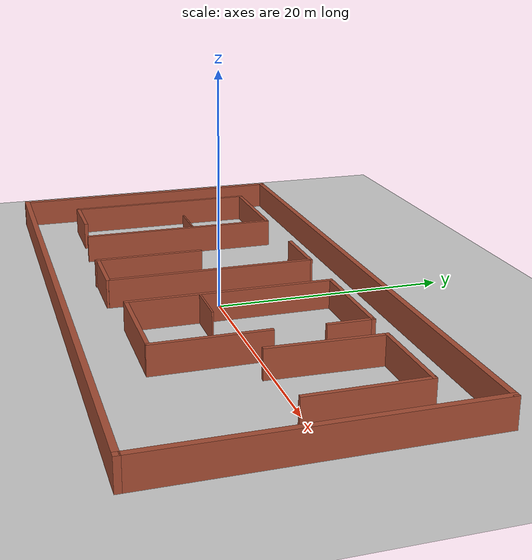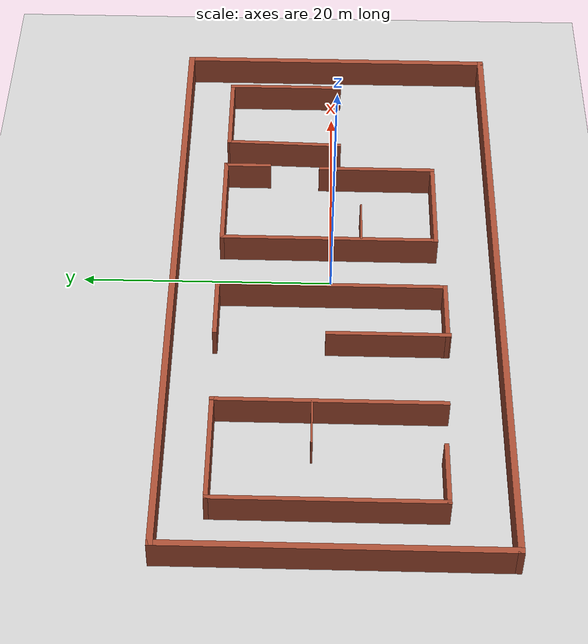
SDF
<sdf version="1.6">
 <world name="default">
  <light name="sun" type="directional">
   <pose>0 0 10 0 -0 0</pose>
   <diffuse>0.8 0.8 0.8 1</diffuse>
   <specular>0.1 0.1 0.1 1</specular>
   <attenuation>
    <range>1000</range>
    <constant>0.9</constant>
    <linear>0.01</linear>
    <quadratic>0.001</quadratic>
   </attenuation>
   <direction>-0.5 0.5 -1</direction>
  </light>
  <model name="ground_plane">
   <static>1</static>
   <link name="link">
    <collision name="collision">
     <geometry><plane><normal>0 0 1</normal><size>100 100</size></plane></geometry>
     <surface><friction><ode><mu>100</mu><mu2>50</mu2></ode></friction></surface>
    </collision>
    <visual name="visual">
     <cast_shadows>0</cast_shadows>
     <geometry><plane><normal>0 0 1</normal><size>100 100</size></plane></geometry>
     <material>
      <script><uri>file://media/materials/scripts/gazebo.material</uri><name>Gazebo/Grey</name></script>
     </material>
    </visual>
   </link>
  </model>
  <gravity>0 0 -9.8</gravity>
  <magnetic_field>6e-06 2.3e-05 -4.2e-05</magnetic_field>
  <atmosphere type="adiabatic"/>
  <physics name="default_physics" default="0" type="ode">
   <max_step_size>0.001</max_step_size>
   <real_time_factor>1</real_time_factor>
   <real_time_update_rate>1000</real_time_update_rate>
  </physics>
  <scene><ambient>0.4 0.4 0.4 1</ambient><background>0.7 0.7 0.7 1</background><shadows>1</shadows></scene>
  <spherical_coordinates>
   <surface_model>EARTH_WGS84</surface_model>
   <latitude_deg>0</latitude_deg>
   <longitude_deg>0</longitude_deg>
   <elevation>0</elevation>
   <heading_deg>0</heading_deg>
  </spherical_coordinates>
  <model name="map_two_0">
   <link name="Wall_0">
    <pose>1e-06 12.925 0 0 -0 0</pose>
    <visual name="Wall_0_Visual">
     <pose>0 0 1.25 0 -0 0</pose>
     <geometry><box><size>53.35 0.5 2.5</size></box></geometry>
     <material>
      <script><uri>file://media/materials/scripts/gazebo.material</uri><name>Gazebo/Bricks</name></script>
      <ambient>1 1 1 1</ambient>
      <diffuse>1 1 1 1</diffuse>
      <specular>0.2 0.2 0.2 1</specular>
      <emissive>0 0 0 1</emissive>
     </material>
    </visual>
    <collision name="Wall_0_Collision">
     <pose>0 0 1.25 0 -0 0</pose>
     <geometry><box><size>53.35 0.5 2.5</size></box></geometry>
     <surface>
      <friction>
       <ode><mu>1</mu><mu2>1</mu2><fdir1>0 0 0</fdir1><slip1>0</slip1><slip2>0</slip2></ode>
       <torsional>
        <coefficient>1</coefficient>
        <patch_radius>0</patch_radius>
        <surface_radius>0</surface_radius>
        <use_patch_radius>1</use_patch_radius>
        <ode><slip>0</slip></ode>
       </torsional>
      </friction>
      <bounce><restitution_coefficient>0</restitution_coefficient><threshold>1e+06</threshold></bounce>
      <contact>
       <collide_without_contact>0</collide_without_contact>
       <collide_without_contact_bitmask>1</collide_without_contact_bitmask>
       <collide_bitmask>1</collide_bitmask>
       <ode>
        <soft_cfm>0</soft_cfm>
        <soft_erp>0.2</soft_erp>
        <kp>1e+13</kp>
        <kd>1</kd>
        <max_vel>0.01</max_vel>
        <min_depth>0</min_depth>
       </ode>
       <bullet>
        <split_impulse>1</split_impulse>
        <split_impulse_penetration_threshold>-0.01</split_impulse_penetration_threshold>
        <soft_cfm>0</soft_cfm>
        <soft_erp>0.2</soft_erp>
        <kp>1e+13</kp>
        <kd>1</kd>
       </bullet>
      </contact>
     </surface>
    </collision>
   </link>
   <link name="Wall_1">
    <pose>26.425 0 0 0 0 -1.5708</pose>
    <visual name="Wall_1_Visual">
     <pose>0 0 1.25 0 -0 0</pose>
     <geometry><box><size>26.35 0.5 2.5</size></box></geometry>
     <material>
      <script><uri>file://media/materials/scripts/gazebo.material</uri><name>Gazebo/Bricks</name></script>
      <ambient>1 1 1 1</ambient>
      <diffuse>1 1 1 1</diffuse>
      <specular>0.2 0.2 0.2 1</specular>
      <emissive>0 0 0 1</emissive>
     </material>
    </visual>
    <collision name="Wall_1_Collision">
     <pose>0 0 1.25 0 -0 0</pose>
     <geometry><box><size>26.35 0.5 2.5</size></box></geometry>
     <surface>
      <friction>
       <ode><mu>1</mu><mu2>1</mu2><fdir1>0 0 0</fdir1><slip1>0</slip1><slip2>0</slip2></ode>
       <torsional>
        <coefficient>1</coefficient>
        <patch_radius>0</patch_radius>
        <surface_radius>0</surface_radius>
        <use_patch_radius>1</use_patch_radius>
        <ode><slip>0</slip></ode>
       </torsional>
      </friction>
      <bounce><restitution_coefficient>0</restitution_coefficient><threshold>1e+06</threshold></bounce>
      <contact>
       <collide_without_contact>0</collide_without_contact>
       <collide_without_contact_bitmask>1</collide_without_contact_bitmask>
       <collide_bitmask>1</collide_bitmask>
       <ode>
        <soft_cfm>0</soft_cfm>
        <soft_erp>0.2</soft_erp>
        <kp>1e+13</kp>
        <kd>1</kd>
        <max_vel>0.01</max_vel>
        <min_depth>0</min_depth>
       </ode>
       <bullet>
        <split_impulse>1</split_impulse>
        <split_impulse_penetration_threshold>-0.01</split_impulse_penetration_threshold>
        <soft_cfm>0</soft_cfm>
        <soft_erp>0.2</soft_erp>
        <kp>1e+13</kp>
        <kd>1</kd>
       </bullet>
      </contact>
     </surface>
    </collision>
   </link>
   <link name="Wall_2">
    <pose>1e-06 -12.925 0 0 -0 3.14159</pose>
    <visual name="Wall_2_Visual">
     <pose>0 0 1.25 0 -0 0</pose>
     <geometry><box><size>53.35 0.5 2.5</size></box></geometry>
     <material>
      <script><uri>file://media/materials/scripts/gazebo.material</uri><name>Gazebo/Bricks</name></script>
      <ambient>1 1 1 1</ambient>
      <diffuse>1 1 1 1</diffuse>
      <specular>0.2 0.2 0.2 1</specular>
      <emissive>0 0 0 1</emissive>
     </material>
    </visual>
    <collision name="Wall_2_Collision">
     <pose>0 0 1.25 0 -0 0</pose>
     <geometry><box><size>53.35 0.5 2.5</size></box></geometry>
     <surface>
      <friction>
       <ode><mu>1</mu><mu2>1</mu2><fdir1>0 0 0</fdir1><slip1>0</slip1><slip2>0</slip2></ode>
       <torsional>
        <coefficient>1</coefficient>
        <patch_radius>0</patch_radius>
        <surface_radius>0</surface_radius>
        <use_patch_radius>1</use_patch_radius>
        <ode><slip>0</slip></ode>
       </torsional>
      </friction>
      <bounce><restitution_coefficient>0</restitution_coefficient><threshold>1e+06</threshold></bounce>
      <contact>
       <collide_without_contact>0</collide_without_contact>
       <collide_without_contact_bitmask>1</collide_without_contact_bitmask>
       <collide_bitmask>1</collide_bitmask>
       <ode>
        <soft_cfm>0</soft_cfm>
        <soft_erp>0.2</soft_erp>
        <kp>1e+13</kp>
        <kd>1</kd>
        <max_vel>0.01</max_vel>
        <min_depth>0</min_depth>
       </ode>
       <bullet>
        <split_impulse>1</split_impulse>
        <split_impulse_penetration_threshold>-0.01</split_impulse_penetration_threshold>
        <soft_cfm>0</soft_cfm>
        <soft_erp>0.2</soft_erp>
        <kp>1e+13</kp>
        <kd>1</kd>
       </bullet>
      </contact>
     </surface>
    </collision>
   </link>
   <link name="Wall_21">
    <pose>-17.839 9.223 0 0 -0 0</pose>
    <visual name="Wall_21_Visual">
     <pose>0 0 1.25 0 -0 0</pose>
     <geometry><box><size>9.45 0.35 2.5</size></box></geometry>
     <material>
      <script><uri>file://media/materials/scripts/gazebo.material</uri><name>Gazebo/Bricks</name></script>
      <ambient>1 1 1 1</ambient>
      <diffuse>1 1 1 1</diffuse>
      <specular>0.2 0.2 0.2 1</specular>
      <emissive>0 0 0 1</emissive>
     </material>
    </visual>
    <collision name="Wall_21_Collision">
     <pose>0 0 1.25 0 -0 0</pose>
     <geometry><box><size>9.45 0.35 2.5</size></box></geometry>
     <surface>
      <friction>
       <ode><mu>1</mu><mu2>1</mu2><fdir1>0 0 0</fdir1><slip1>0</slip1><slip2>0</slip2></ode>
       <torsional>
        <coefficient>1</coefficient>
        <patch_radius>0</patch_radius>
        <surface_radius>0</surface_radius>
        <use_patch_radius>1</use_patch_radius>
        <ode><slip>0</slip></ode>
       </torsional>
      </friction>
      <bounce><restitution_coefficient>0</restitution_coefficient><threshold>1e+06</threshold></bounce>
      <contact>
       <collide_without_contact>0</collide_without_contact>
       <collide_without_contact_bitmask>1</collide_without_contact_bitmask>
       <collide_bitmask>1</collide_bitmask>
       <ode>
        <soft_cfm>0</soft_cfm>
        <soft_erp>0.2</soft_erp>
        <kp>1e+13</kp>
        <kd>1</kd>
        <max_vel>0.01</max_vel>
        <min_depth>0</min_depth>
       </ode>
       <bullet>
        <split_impulse>1</split_impulse>
        <split_impulse_penetration_threshold>-0.01</split_impulse_penetration_threshold>
        <soft_cfm>0</soft_cfm>
        <soft_erp>0.2</soft_erp>
        <kp>1e+13</kp>
        <kd>1</kd>
       </bullet>
      </contact>
     </surface>
    </collision>
   </link>
   <link name="Wall_22">
    <pose>-13.289 0.423 0 0 0 -1.5708</pose>
    <visual name="Wall_22_Visual">
     <pose>0 0 1.25 0 -0 0</pose>
     <geometry><box><size>17.9498 0.35 2.5</size></box></geometry>
     <material>
      <script><uri>file://media/materials/scripts/gazebo.material</uri><name>Gazebo/Bricks</name></script>
      <ambient>1 1 1 1</ambient>
      <diffuse>1 1 1 1</diffuse>
      <specular>0.2 0.2 0.2 1</specular>
      <emissive>0 0 0 1</emissive>
     </material>
    </visual>
    <collision name="Wall_22_Collision">
     <pose>0 0 1.25 0 -0 0</pose>
     <geometry><box><size>17.9498 0.35 2.5</size></box></geometry>
     <surface>
      <friction>
       <ode><mu>1</mu><mu2>1</mu2><fdir1>0 0 0</fdir1><slip1>0</slip1><slip2>0</slip2></ode>
       <torsional>
        <coefficient>1</coefficient>
        <patch_radius>0</patch_radius>
        <surface_radius>0</surface_radius>
        <use_patch_radius>1</use_patch_radius>
        <ode><slip>0</slip></ode>
       </torsional>
      </friction>
      <bounce><restitution_coefficient>0</restitution_coefficient><threshold>1e+06</threshold></bounce>
      <contact>
       <collide_without_contact>0</collide_without_contact>
       <collide_without_contact_bitmask>1</collide_without_contact_bitmask>
       <collide_bitmask>1</collide_bitmask>
       <ode>
        <soft_cfm>0</soft_cfm>
        <soft_erp>0.2</soft_erp>
        <kp>1e+13</kp>
        <kd>1</kd>
        <max_vel>0.01</max_vel>
        <min_depth>0</min_depth>
       </ode>
       <bullet>
        <split_impulse>1</split_impulse>
        <split_impulse_penetration_threshold>-0.01</split_impulse_penetration_threshold>
        <soft_cfm>0</soft_cfm>
        <soft_erp>0.2</soft_erp>
        <kp>1e+13</kp>
        <kd>1</kd>
       </bullet>
      </contact>
     </surface>
    </collision>
   </link>
   <link name="Wall_22_clone">
    <pose>-1.35731 0.333 0 0 0 -1.5708</pose>
    <visual name="Wall_22_Visual">
     <pose>0 0 1.25 0 -0 0</pose>
     <geometry><box><size>17.9498 0.35 2.5</size></box></geometry>
     <material>
      <script><uri>file://media/materials/scripts/gazebo.material</uri><name>Gazebo/Bricks</name></script>
      <ambient>1 1 1 1</ambient>
      <diffuse>1 1 1 1</diffuse>
      <specular>0.2 0.2 0.2 1</specular>
      <emissive>0 0 0 1</emissive>
      <shader type="pixel"/>
     </material>
    </visual>
    <collision name="Wall_22_Collision">
     <pose>0 0 1.25 0 -0 0</pose>
     <geometry><box><size>17.9498 0.35 2.5</size></box></geometry>
     <surface>
      <friction>
       <ode><mu>1</mu><mu2>1</mu2><fdir1>0 0 0</fdir1><slip1>0</slip1><slip2>0</slip2></ode>
       <torsional>
        <coefficient>1</coefficient>
        <patch_radius>0</patch_radius>
        <surface_radius>0</surface_radius>
        <use_patch_radius>1</use_patch_radius>
        <ode><slip>0</slip></ode>
       </torsional>
      </friction>
      <bounce><restitution_coefficient>0</restitution_coefficient><threshold>1e+06</threshold></bounce>
      <contact>
       <collide_without_contact>0</collide_without_contact>
       <collide_without_contact_bitmask>1</collide_without_contact_bitmask>
       <collide_bitmask>1</collide_bitmask>
       <ode>
        <soft_cfm>0</soft_cfm>
        <soft_erp>0.2</soft_erp>
        <kp>1e+13</kp>
        <kd>1</kd>
        <max_vel>0.01</max_vel>
        <min_depth>0</min_depth>
       </ode>
       <bullet>
        <split_impulse>1</split_impulse>
        <split_impulse_penetration_threshold>-0.01</split_impulse_penetration_threshold>
        <soft_cfm>0</soft_cfm>
        <soft_erp>0.2</soft_erp>
        <kp>1e+13</kp>
        <kd>1</kd>
       </bullet>
      </contact>
     </surface>
    </collision>
   </link>
   <link name="Wall_27">
    <pose>-22.389 0.548 0 0 0 -1.5708</pose>
    <visual name="Wall_27_Visual">
     <pose>0 0 1.25 0 -0 0</pose>
     <geometry><box><size>17.6998 0.35 2.5</size></box></geometry>
     <material>
      <script><uri>file://media/materials/scripts/gazebo.material</uri><name>Gazebo/Bricks</name></script>
      <ambient>1 1 1 1</ambient>
      <diffuse>1 1 1 1</diffuse>
      <specular>0.2 0.2 0.2 1</specular>
      <emissive>0 0 0 1</emissive>
     </material>
    </visual>
    <collision name="Wall_27_Collision">
     <pose>0 0 1.25 0 -0 0</pose>
     <geometry><box><size>17.6998 0.35 2.5</size></box></geometry>
     <surface>
      <friction>
       <ode><mu>1</mu><mu2>1</mu2><fdir1>0 0 0</fdir1><slip1>0</slip1><slip2>0</slip2></ode>
       <torsional>
        <coefficient>1</coefficient>
        <patch_radius>0</patch_radius>
        <surface_radius>0</surface_radius>
        <use_patch_radius>1</use_patch_radius>
        <ode><slip>0</slip></ode>
       </torsional>
      </friction>
      <bounce><restitution_coefficient>0</restitution_coefficient><threshold>1e+06</threshold></bounce>
      <contact>
       <collide_without_contact>0</collide_without_contact>
       <collide_without_contact_bitmask>1</collide_without_contact_bitmask>
       <collide_bitmask>1</collide_bitmask>
       <ode>
        <soft_cfm>0</soft_cfm>
        <soft_erp>0.2</soft_erp>
        <kp>1e+13</kp>
        <kd>1</kd>
        <max_vel>0.01</max_vel>
        <min_depth>0</min_depth>
       </ode>
       <bullet>
        <split_impulse>1</split_impulse>
        <split_impulse_penetration_threshold>-0.01</split_impulse_penetration_threshold>
        <soft_cfm>0</soft_cfm>
        <soft_erp>0.2</soft_erp>
        <kp>1e+13</kp>
        <kd>1</kd>
       </bullet>
      </contact>
     </surface>
    </collision>
   </link>
   <link name="Wall_30">
    <pose>-19.839 -8.127 0 0 -0 0</pose>
    <visual name="Wall_30_Visual">
     <pose>0 0 1.25 0 -0 0</pose>
     <geometry><box><size>5.4496 0.35 2.5</size></box></geometry>
     <material>
      <script><uri>file://media/materials/scripts/gazebo.material</uri><name>Gazebo/Bricks</name></script>
      <ambient>1 1 1 1</ambient>
      <diffuse>1 1 1 1</diffuse>
      <specular>0.2 0.2 0.2 1</specular>
      <emissive>0 0 0 1</emissive>
     </material>
    </visual>
    <collision name="Wall_30_Collision">
     <pose>0 0 1.25 0 -0 0</pose>
     <geometry><box><size>5.4496 0.35 2.5</size></box></geometry>
     <surface>
      <friction>
       <ode><mu>1</mu><mu2>1</mu2><fdir1>0 0 0</fdir1><slip1>0</slip1><slip2>0</slip2></ode>
       <torsional>
        <coefficient>1</coefficient>
        <patch_radius>0</patch_radius>
        <surface_radius>0</surface_radius>
        <use_patch_radius>1</use_patch_radius>
        <ode><slip>0</slip></ode>
       </torsional>
      </friction>
      <bounce><restitution_coefficient>0</restitution_coefficient><threshold>1e+06</threshold></bounce>
      <contact>
       <collide_without_contact>0</collide_without_contact>
       <collide_without_contact_bitmask>1</collide_without_contact_bitmask>
       <collide_bitmask>1</collide_bitmask>
       <ode>
        <soft_cfm>0</soft_cfm>
        <soft_erp>0.2</soft_erp>
        <kp>1e+13</kp>
        <kd>1</kd>
        <max_vel>0.01</max_vel>
        <min_depth>0</min_depth>
       </ode>
       <bullet>
        <split_impulse>1</split_impulse>
        <split_impulse_penetration_threshold>-0.01</split_impulse_penetration_threshold>
        <soft_cfm>0</soft_cfm>
        <soft_erp>0.2</soft_erp>
        <kp>1e+13</kp>
        <kd>1</kd>
       </bullet>
      </contact>
     </surface>
    </collision>
   </link>
   <link name="Wall_30_clone">
    <pose>-3.937 -8.667 0 0 -0 0</pose>
    <visual name="Wall_30_Visual">
     <pose>0 0 1.25 0 -0 0</pose>
     <geometry><box><size>5.4496 0.35 2.5</size></box></geometry>
     <material>
      <script><uri>file://media/materials/scripts/gazebo.material</uri><name>Gazebo/Bricks</name></script>
      <ambient>1 1 1 1</ambient>
      <diffuse>1 1 1 1</diffuse>
      <specular>0.2 0.2 0.2 1</specular>
      <emissive>0 0 0 1</emissive>
      <shader type="pixel"/>
     </material>
    </visual>
    <collision name="Wall_30_Collision">
     <pose>0 0 1.25 0 -0 0</pose>
     <geometry><box><size>5.4496 0.35 2.5</size></box></geometry>
     <surface>
      <friction>
       <ode><mu>1</mu><mu2>1</mu2><fdir1>0 0 0</fdir1><slip1>0</slip1><slip2>0</slip2></ode>
       <torsional>
        <coefficient>1</coefficient>
        <patch_radius>0</patch_radius>
        <surface_radius>0</surface_radius>
        <use_patch_radius>1</use_patch_radius>
        <ode><slip>0</slip></ode>
       </torsional>
      </friction>
      <bounce><restitution_coefficient>0</restitution_coefficient><threshold>1e+06</threshold></bounce>
      <contact>
       <collide_without_contact>0</collide_without_contact>
       <collide_without_contact_bitmask>1</collide_without_contact_bitmask>
       <collide_bitmask>1</collide_bitmask>
       <ode>
        <soft_cfm>0</soft_cfm>
        <soft_erp>0.2</soft_erp>
        <kp>1e+13</kp>
        <kd>1</kd>
        <max_vel>0.01</max_vel>
        <min_depth>0</min_depth>
       </ode>
       <bullet>
        <split_impulse>1</split_impulse>
        <split_impulse_penetration_threshold>-0.01</split_impulse_penetration_threshold>
        <soft_cfm>0</soft_cfm>
        <soft_erp>0.2</soft_erp>
        <kp>1e+13</kp>
        <kd>1</kd>
       </bullet>
      </contact>
     </surface>
    </collision>
   </link>
   <link name="Wall_30_clone_0">
    <pose>-3.937 9.333 0 0 -0 0</pose>
    <visual name="Wall_30_Visual">
     <pose>0 0 1.25 0 -0 0</pose>
     <geometry><box><size>5.4496 0.35 2.5</size></box></geometry>
     <material>
      <script><uri>file://media/materials/scripts/gazebo.material</uri><name>Gazebo/Bricks</name></script>
      <ambient>1 1 1 1</ambient>
      <diffuse>1 1 1 1</diffuse>
      <specular>0.2 0.2 0.2 1</specular>
      <emissive>0 0 0 1</emissive>
      <shader type="pixel"/>
     </material>
    </visual>
    <collision name="Wall_30_Collision">
     <pose>0 0 1.25 0 -0 0</pose>
     <geometry><box><size>5.4496 0.35 2.5</size></box></geometry>
     <surface>
      <friction>
       <ode><mu>1</mu><mu2>1</mu2><fdir1>0 0 0</fdir1><slip1>0</slip1><slip2>0</slip2></ode>
       <torsional>
        <coefficient>1</coefficient>
        <patch_radius>0</patch_radius>
        <surface_radius>0</surface_radius>
        <use_patch_radius>1</use_patch_radius>
        <ode><slip>0</slip></ode>
       </torsional>
      </friction>
      <bounce><restitution_coefficient>0</restitution_coefficient><threshold>1e+06</threshold></bounce>
      <contact>
       <collide_without_contact>0</collide_without_contact>
       <collide_without_contact_bitmask>1</collide_without_contact_bitmask>
       <collide_bitmask>1</collide_bitmask>
       <ode>
        <soft_cfm>0</soft_cfm>
        <soft_erp>0.2</soft_erp>
        <kp>1e+13</kp>
        <kd>1</kd>
        <max_vel>0.01</max_vel>
        <min_depth>0</min_depth>
       </ode>
       <bullet>
        <split_impulse>1</split_impulse>
        <split_impulse_penetration_threshold>-0.01</split_impulse_penetration_threshold>
        <soft_cfm>0</soft_cfm>
        <soft_erp>0.2</soft_erp>
        <kp>1e+13</kp>
        <kd>1</kd>
       </bullet>
      </contact>
     </surface>
    </collision>
   </link>
   <link name="Wall_32">
    <pose>-15.2991 1.72294 0 0 -0 0</pose>
    <visual name="Wall_32_Visual">
     <pose>0 0 1.25 0 -0 0</pose>
     <geometry><box><size>4 0.15 2.5</size></box></geometry>
     <material>
      <script><uri>file://media/materials/scripts/gazebo.material</uri><name>Gazebo/Bricks</name></script>
      <ambient>1 1 1 1</ambient>
      <diffuse>1 1 1 1</diffuse>
      <specular>0.2 0.2 0.2 1</specular>
      <emissive>0 0 0 1</emissive>
     </material>
    </visual>
    <collision name="Wall_32_Collision">
     <pose>0 0 1.25 0 -0 0</pose>
     <geometry><box><size>4 0.15 2.5</size></box></geometry>
     <surface>
      <friction>
       <ode><mu>1</mu><mu2>1</mu2><fdir1>0 0 0</fdir1><slip1>0</slip1><slip2>0</slip2></ode>
       <torsional>
        <coefficient>1</coefficient>
        <patch_radius>0</patch_radius>
        <surface_radius>0</surface_radius>
        <use_patch_radius>1</use_patch_radius>
        <ode><slip>0</slip></ode>
       </torsional>
      </friction>
      <bounce><restitution_coefficient>0</restitution_coefficient><threshold>1e+06</threshold></bounce>
      <contact>
       <collide_without_contact>0</collide_without_contact>
       <collide_without_contact_bitmask>1</collide_without_contact_bitmask>
       <collide_bitmask>1</collide_bitmask>
       <ode>
        <soft_cfm>0</soft_cfm>
        <soft_erp>0.2</soft_erp>
        <kp>1e+13</kp>
        <kd>1</kd>
        <max_vel>0.01</max_vel>
        <min_depth>0</min_depth>
       </ode>
       <bullet>
        <split_impulse>1</split_impulse>
        <split_impulse_penetration_threshold>-0.01</split_impulse_penetration_threshold>
        <soft_cfm>0</soft_cfm>
        <soft_erp>0.2</soft_erp>
        <kp>1e+13</kp>
        <kd>1</kd>
       </bullet>
      </contact>
     </surface>
    </collision>
   </link>
   <link name="Wall_49">
    <pose>3.861 0.548 0 0 0 -1.5708</pose>
    <visual name="Wall_49_Visual">
     <pose>0 0 1.25 0 -0 0</pose>
     <geometry><box><size>17.6998 0.35 2.5</size></box></geometry>
     <material>
      <script><uri>file://media/materials/scripts/gazebo.material</uri><name>Gazebo/Bricks</name></script>
      <ambient>1 1 1 1</ambient>
      <diffuse>1 1 1 1</diffuse>
      <specular>0.2 0.2 0.2 1</specular>
      <emissive>0 0 0 1</emissive>
     </material>
    </visual>
    <collision name="Wall_49_Collision">
     <pose>0 0 1.25 0 -0 0</pose>
     <geometry><box><size>17.6998 0.35 2.5</size></box></geometry>
     <surface>
      <friction>
       <ode><mu>1</mu><mu2>1</mu2><fdir1>0 0 0</fdir1><slip1>0</slip1><slip2>0</slip2></ode>
       <torsional>
        <coefficient>1</coefficient>
        <patch_radius>0</patch_radius>
        <surface_radius>0</surface_radius>
        <use_patch_radius>1</use_patch_radius>
        <ode><slip>0</slip></ode>
       </torsional>
      </friction>
      <bounce><restitution_coefficient>0</restitution_coefficient><threshold>1e+06</threshold></bounce>
      <contact>
       <collide_without_contact>0</collide_without_contact>
       <collide_without_contact_bitmask>1</collide_without_contact_bitmask>
       <collide_bitmask>1</collide_bitmask>
       <ode>
        <soft_cfm>0</soft_cfm>
        <soft_erp>0.2</soft_erp>
        <kp>1e+13</kp>
        <kd>1</kd>
        <max_vel>0.01</max_vel>
        <min_depth>0</min_depth>
       </ode>
       <bullet>
        <split_impulse>1</split_impulse>
        <split_impulse_penetration_threshold>-0.01</split_impulse_penetration_threshold>
        <soft_cfm>0</soft_cfm>
        <soft_erp>0.2</soft_erp>
        <kp>1e+13</kp>
        <kd>1</kd>
       </bullet>
      </contact>
     </surface>
    </collision>
   </link>
   <link name="Wall_5">
    <pose>-26.425 0 0 0 -0 1.5708</pose>
    <visual name="Wall_5_Visual">
     <pose>0 0 1.25 0 -0 0</pose>
     <geometry><box><size>26.35 0.5 2.5</size></box></geometry>
     <material>
      <script><uri>file://media/materials/scripts/gazebo.material</uri><name>Gazebo/Bricks</name></script>
      <ambient>1 1 1 1</ambient>
      <diffuse>1 1 1 1</diffuse>
      <specular>0.2 0.2 0.2 1</specular>
      <emissive>0 0 0 1</emissive>
     </material>
    </visual>
    <collision name="Wall_5_Collision">
     <pose>0 0 1.25 0 -0 0</pose>
     <geometry><box><size>26.35 0.5 2.5</size></box></geometry>
     <surface>
      <friction>
       <ode><mu>1</mu><mu2>1</mu2><fdir1>0 0 0</fdir1><slip1>0</slip1><slip2>0</slip2></ode>
       <torsional>
        <coefficient>1</coefficient>
        <patch_radius>0</patch_radius>
        <surface_radius>0</surface_radius>
        <use_patch_radius>1</use_patch_radius>
        <ode><slip>0</slip></ode>
       </torsional>
      </friction>
      <bounce><restitution_coefficient>0</restitution_coefficient><threshold>1e+06</threshold></bounce>
      <contact>
       <collide_without_contact>0</collide_without_contact>
       <collide_without_contact_bitmask>1</collide_without_contact_bitmask>
       <collide_bitmask>1</collide_bitmask>
       <ode>
        <soft_cfm>0</soft_cfm>
        <soft_erp>0.2</soft_erp>
        <kp>1e+13</kp>
        <kd>1</kd>
        <max_vel>0.01</max_vel>
        <min_depth>0</min_depth>
       </ode>
       <bullet>
        <split_impulse>1</split_impulse>
        <split_impulse_penetration_threshold>-0.01</split_impulse_penetration_threshold>
        <soft_cfm>0</soft_cfm>
        <soft_erp>0.2</soft_erp>
        <kp>1e+13</kp>
        <kd>1</kd>
       </bullet>
      </contact>
     </surface>
    </collision>
   </link>
   <link name="Wall_50">
    <pose>8.036 -8.127 0 0 -0 0</pose>
    <visual name="Wall_50_Visual">
     <pose>0 0 1.25 0 -0 0</pose>
     <geometry><box><size>8.7 0.35 2.5</size></box></geometry>
     <material>
      <script><uri>file://media/materials/scripts/gazebo.material</uri><name>Gazebo/Bricks</name></script>
      <ambient>1 1 1 1</ambient>
      <diffuse>1 1 1 1</diffuse>
      <specular>0.2 0.2 0.2 1</specular>
      <emissive>0 0 0 1</emissive>
     </material>
    </visual>
    <collision name="Wall_50_Collision">
     <pose>0 0 1.25 0 -0 0</pose>
     <geometry><box><size>8.7 0.35 2.5</size></box></geometry>
     <surface>
      <friction>
       <ode><mu>1</mu><mu2>1</mu2><fdir1>0 0 0</fdir1><slip1>0</slip1><slip2>0</slip2></ode>
       <torsional>
        <coefficient>1</coefficient>
        <patch_radius>0</patch_radius>
        <surface_radius>0</surface_radius>
        <use_patch_radius>1</use_patch_radius>
        <ode><slip>0</slip></ode>
       </torsional>
      </friction>
      <bounce><restitution_coefficient>0</restitution_coefficient><threshold>1e+06</threshold></bounce>
      <contact>
       <collide_without_contact>0</collide_without_contact>
       <collide_without_contact_bitmask>1</collide_without_contact_bitmask>
       <collide_bitmask>1</collide_bitmask>
       <ode>
        <soft_cfm>0</soft_cfm>
        <soft_erp>0.2</soft_erp>
        <kp>1e+13</kp>
        <kd>1</kd>
        <max_vel>0.01</max_vel>
        <min_depth>0</min_depth>
       </ode>
       <bullet>
        <split_impulse>1</split_impulse>
        <split_impulse_penetration_threshold>-0.01</split_impulse_penetration_threshold>
        <soft_cfm>0</soft_cfm>
        <soft_erp>0.2</soft_erp>
        <kp>1e+13</kp>
        <kd>1</kd>
       </bullet>
      </contact>
     </surface>
    </collision>
   </link>
   <link name="Wall_51">
    <pose>12.211 -3.452 0 0 -0 1.5708</pose>
    <visual name="Wall_51_Visual">
     <pose>0 0 1.25 0 -0 0</pose>
     <geometry><box><size>9.70019 0.35 2.5</size></box></geometry>
     <material>
      <script><uri>file://media/materials/scripts/gazebo.material</uri><name>Gazebo/Bricks</name></script>
      <ambient>1 1 1 1</ambient>
      <diffuse>1 1 1 1</diffuse>
      <specular>0.2 0.2 0.2 1</specular>
      <emissive>0 0 0 1</emissive>
     </material>
    </visual>
    <collision name="Wall_51_Collision">
     <pose>0 0 1.25 0 -0 0</pose>
     <geometry><box><size>9.70019 0.35 2.5</size></box></geometry>
     <surface>
      <friction>
       <ode><mu>1</mu><mu2>1</mu2><fdir1>0 0 0</fdir1><slip1>0</slip1><slip2>0</slip2></ode>
       <torsional>
        <coefficient>1</coefficient>
        <patch_radius>0</patch_radius>
        <surface_radius>0</surface_radius>
        <use_patch_radius>1</use_patch_radius>
        <ode><slip>0</slip></ode>
       </torsional>
      </friction>
      <bounce><restitution_coefficient>0</restitution_coefficient><threshold>1e+06</threshold></bounce>
      <contact>
       <collide_without_contact>0</collide_without_contact>
       <collide_without_contact_bitmask>1</collide_without_contact_bitmask>
       <collide_bitmask>1</collide_bitmask>
       <ode>
        <soft_cfm>0</soft_cfm>
        <soft_erp>0.2</soft_erp>
        <kp>1e+13</kp>
        <kd>1</kd>
        <max_vel>0.01</max_vel>
        <min_depth>0</min_depth>
       </ode>
       <bullet>
        <split_impulse>1</split_impulse>
        <split_impulse_penetration_threshold>-0.01</split_impulse_penetration_threshold>
        <soft_cfm>0</soft_cfm>
        <soft_erp>0.2</soft_erp>
        <kp>1e+13</kp>
        <kd>1</kd>
       </bullet>
      </contact>
     </surface>
    </collision>
   </link>
   <link name="Wall_51_clone">
    <pose>-6.47046 -4.08887 0 0 -0 1.5708</pose>
    <visual name="Wall_51_Visual">
     <pose>0 0 1.25 0 -0 0</pose>
     <geometry><box><size>9.70019 0.35 2.5</size></box></geometry>
     <material>
      <script><uri>file://media/materials/scripts/gazebo.material</uri><name>Gazebo/Bricks</name></script>
      <ambient>1 1 1 1</ambient>
      <diffuse>1 1 1 1</diffuse>
      <specular>0.2 0.2 0.2 1</specular>
      <emissive>0 0 0 1</emissive>
      <shader type="pixel"/>
     </material>
    </visual>
    <collision name="Wall_51_Collision">
     <pose>0 0 1.25 0 -0 0</pose>
     <geometry><box><size>9.70019 0.35 2.5</size></box></geometry>
     <surface>
      <friction>
       <ode><mu>1</mu><mu2>1</mu2><fdir1>0 0 0</fdir1><slip1>0</slip1><slip2>0</slip2></ode>
       <torsional>
        <coefficient>1</coefficient>
        <patch_radius>0</patch_radius>
        <surface_radius>0</surface_radius>
        <use_patch_radius>1</use_patch_radius>
        <ode><slip>0</slip></ode>
       </torsional>
      </friction>
      <bounce><restitution_coefficient>0</restitution_coefficient><threshold>1e+06</threshold></bounce>
      <contact>
       <collide_without_contact>0</collide_without_contact>
       <collide_without_contact_bitmask>1</collide_without_contact_bitmask>
       <collide_bitmask>1</collide_bitmask>
       <ode>
        <soft_cfm>0</soft_cfm>
        <soft_erp>0.2</soft_erp>
        <kp>1e+13</kp>
        <kd>1</kd>
        <max_vel>0.01</max_vel>
        <min_depth>0</min_depth>
       </ode>
       <bullet>
        <split_impulse>1</split_impulse>
        <split_impulse_penetration_threshold>-0.01</split_impulse_penetration_threshold>
        <soft_cfm>0</soft_cfm>
        <soft_erp>0.2</soft_erp>
        <kp>1e+13</kp>
        <kd>1</kd>
       </bullet>
      </contact>
     </surface>
    </collision>
   </link>
   <link name="Wall_53">
    <pose>8.161 9.223 0 0 -0 0</pose>
    <visual name="Wall_53_Visual">
     <pose>0 0 1.25 0 -0 0</pose>
     <geometry><box><size>8.95047 0.35 2.5</size></box></geometry>
     <material>
      <script><uri>file://media/materials/scripts/gazebo.material</uri><name>Gazebo/Bricks</name></script>
      <ambient>1 1 1 1</ambient>
      <diffuse>1 1 1 1</diffuse>
      <specular>0.2 0.2 0.2 1</specular>
      <emissive>0 0 0 1</emissive>
     </material>
    </visual>
    <collision name="Wall_53_Collision">
     <pose>0 0 1.25 0 -0 0</pose>
     <geometry><box><size>8.95047 0.35 2.5</size></box></geometry>
     <surface>
      <friction>
       <ode><mu>1</mu><mu2>1</mu2><fdir1>0 0 0</fdir1><slip1>0</slip1><slip2>0</slip2></ode>
       <torsional>
        <coefficient>1</coefficient>
        <patch_radius>0</patch_radius>
        <surface_radius>0</surface_radius>
        <use_patch_radius>1</use_patch_radius>
        <ode><slip>0</slip></ode>
       </torsional>
      </friction>
      <bounce><restitution_coefficient>0</restitution_coefficient><threshold>1e+06</threshold></bounce>
      <contact>
       <collide_without_contact>0</collide_without_contact>
       <collide_without_contact_bitmask>1</collide_without_contact_bitmask>
       <collide_bitmask>1</collide_bitmask>
       <ode>
        <soft_cfm>0</soft_cfm>
        <soft_erp>0.2</soft_erp>
        <kp>1e+13</kp>
        <kd>1</kd>
        <max_vel>0.01</max_vel>
        <min_depth>0</min_depth>
       </ode>
       <bullet>
        <split_impulse>1</split_impulse>
        <split_impulse_penetration_threshold>-0.01</split_impulse_penetration_threshold>
        <soft_cfm>0</soft_cfm>
        <soft_erp>0.2</soft_erp>
        <kp>1e+13</kp>
        <kd>1</kd>
       </bullet>
      </contact>
     </surface>
    </collision>
   </link>
   <link name="Wall_57">
    <pose>5.85723 -2.09794 0 0 -0 0</pose>
    <visual name="Wall_57_Visual">
     <pose>0 0 1.25 0 -0 0</pose>
     <geometry><box><size>4 0.15 2.5</size></box></geometry>
     <material>
      <script><uri>file://media/materials/scripts/gazebo.material</uri><name>Gazebo/Bricks</name></script>
      <ambient>1 1 1 1</ambient>
      <diffuse>1 1 1 1</diffuse>
      <specular>0.2 0.2 0.2 1</specular>
      <emissive>0 0 0 1</emissive>
     </material>
    </visual>
    <collision name="Wall_57_Collision">
     <pose>0 0 1.25 0 -0 0</pose>
     <geometry><box><size>4 0.15 2.5</size></box></geometry>
     <surface>
      <friction>
       <ode><mu>1</mu><mu2>1</mu2><fdir1>0 0 0</fdir1><slip1>0</slip1><slip2>0</slip2></ode>
       <torsional>
        <coefficient>1</coefficient>
        <patch_radius>0</patch_radius>
        <surface_radius>0</surface_radius>
        <use_patch_radius>1</use_patch_radius>
        <ode><slip>0</slip></ode>
       </torsional>
      </friction>
      <bounce><restitution_coefficient>0</restitution_coefficient><threshold>1e+06</threshold></bounce>
      <contact>
       <collide_without_contact>0</collide_without_contact>
       <collide_without_contact_bitmask>1</collide_without_contact_bitmask>
       <collide_bitmask>1</collide_bitmask>
       <ode>
        <soft_cfm>0</soft_cfm>
        <soft_erp>0.2</soft_erp>
        <kp>1e+13</kp>
        <kd>1</kd>
        <max_vel>0.01</max_vel>
        <min_depth>0</min_depth>
       </ode>
       <bullet>
        <split_impulse>1</split_impulse>
        <split_impulse_penetration_threshold>-0.01</split_impulse_penetration_threshold>
        <soft_cfm>0</soft_cfm>
        <soft_erp>0.2</soft_erp>
        <kp>1e+13</kp>
        <kd>1</kd>
       </bullet>
      </contact>
     </surface>
    </collision>
   </link>
   <link name="Wall_62">
    <pose>19.07 9.082 0 0 -0 0</pose>
    <visual name="Wall_62_Visual">
     <pose>0 0 1.25 0 -0 0</pose>
     <geometry><box><size>7.69987 0.35 2.5</size></box></geometry>
     <material>
      <script><uri>file://media/materials/scripts/gazebo.material</uri><name>Gazebo/Bricks</name></script>
      <ambient>1 1 1 1</ambient>
      <diffuse>1 1 1 1</diffuse>
      <specular>0.2 0.2 0.2 1</specular>
      <emissive>0 0 0 1</emissive>
     </material>
    </visual>
    <collision name="Wall_62_Collision">
     <pose>0 0 1.25 0 -0 0</pose>
     <geometry><box><size>7.69987 0.35 2.5</size></box></geometry>
     <surface>
      <friction>
       <ode><mu>1</mu><mu2>1</mu2><fdir1>0 0 0</fdir1><slip1>0</slip1><slip2>0</slip2></ode>
       <torsional>
        <coefficient>1</coefficient>
        <patch_radius>0</patch_radius>
        <surface_radius>0</surface_radius>
        <use_patch_radius>1</use_patch_radius>
        <ode><slip>0</slip></ode>
       </torsional>
      </friction>
      <bounce><restitution_coefficient>0</restitution_coefficient><threshold>1e+06</threshold></bounce>
      <contact>
       <collide_without_contact>0</collide_without_contact>
       <collide_without_contact_bitmask>1</collide_without_contact_bitmask>
       <collide_bitmask>1</collide_bitmask>
       <ode>
        <soft_cfm>0</soft_cfm>
        <soft_erp>0.2</soft_erp>
        <kp>1e+13</kp>
        <kd>1</kd>
        <max_vel>0.01</max_vel>
        <min_depth>0</min_depth>
       </ode>
       <bullet>
        <split_impulse>1</split_impulse>
        <split_impulse_penetration_threshold>-0.01</split_impulse_penetration_threshold>
        <soft_cfm>0</soft_cfm>
        <soft_erp>0.2</soft_erp>
        <kp>1e+13</kp>
        <kd>1</kd>
       </bullet>
      </contact>
     </surface>
    </collision>
   </link>
   <link name="Wall_63">
    <pose>22.745 4.407 0 0 0 -1.5708</pose>
    <visual name="Wall_63_Visual">
     <pose>0 0 1.25 0 -0 0</pose>
     <geometry><box><size>9.70032 0.35 2.5</size></box></geometry>
     <material>
      <script><uri>file://media/materials/scripts/gazebo.material</uri><name>Gazebo/Bricks</name></script>
      <ambient>1 1 1 1</ambient>
      <diffuse>1 1 1 1</diffuse>
      <specular>0.2 0.2 0.2 1</specular>
      <emissive>0 0 0 1</emissive>
     </material>
    </visual>
    <collision name="Wall_63_Collision">
     <pose>0 0 1.25 0 -0 0</pose>
     <geometry><box><size>9.70032 0.35 2.5</size></box></geometry>
     <surface>
      <friction>
       <ode><mu>1</mu><mu2>1</mu2><fdir1>0 0 0</fdir1><slip1>0</slip1><slip2>0</slip2></ode>
       <torsional>
        <coefficient>1</coefficient>
        <patch_radius>0</patch_radius>
        <surface_radius>0</surface_radius>
        <use_patch_radius>1</use_patch_radius>
        <ode><slip>0</slip></ode>
       </torsional>
      </friction>
      <bounce><restitution_coefficient>0</restitution_coefficient><threshold>1e+06</threshold></bounce>
      <contact>
       <collide_without_contact>0</collide_without_contact>
       <collide_without_contact_bitmask>1</collide_without_contact_bitmask>
       <collide_bitmask>1</collide_bitmask>
       <ode>
        <soft_cfm>0</soft_cfm>
        <soft_erp>0.2</soft_erp>
        <kp>1e+13</kp>
        <kd>1</kd>
        <max_vel>0.01</max_vel>
        <min_depth>0</min_depth>
       </ode>
       <bullet>
        <split_impulse>1</split_impulse>
        <split_impulse_penetration_threshold>-0.01</split_impulse_penetration_threshold>
        <soft_cfm>0</soft_cfm>
        <soft_erp>0.2</soft_erp>
        <kp>1e+13</kp>
        <kd>1</kd>
       </bullet>
      </contact>
     </surface>
    </collision>
   </link>
   <link name="Wall_67">
    <pose>15.27 4.407 0 0 0 -1.59753</pose>
    <visual name="Wall_67_Visual">
     <pose>0 0 1.25 0 -0 0</pose>
     <geometry><box><size>9.70367 0.35 2.5</size></box></geometry>
     <material>
      <script><uri>file://media/materials/scripts/gazebo.material</uri><name>Gazebo/Bricks</name></script>
      <ambient>1 1 1 1</ambient>
      <diffuse>1 1 1 1</diffuse>
      <specular>0.2 0.2 0.2 1</specular>
      <emissive>0 0 0 1</emissive>
     </material>
    </visual>
    <collision name="Wall_67_Collision">
     <pose>0 0 1.25 0 -0 0</pose>
     <geometry><box><size>9.70367 0.35 2.5</size></box></geometry>
     <surface>
      <friction>
       <ode><mu>1</mu><mu2>1</mu2><fdir1>0 0 0</fdir1><slip1>0</slip1><slip2>0</slip2></ode>
       <torsional>
        <coefficient>1</coefficient>
        <patch_radius>0</patch_radius>
        <surface_radius>0</surface_radius>
        <use_patch_radius>1</use_patch_radius>
        <ode><slip>0</slip></ode>
       </torsional>
      </friction>
      <bounce><restitution_coefficient>0</restitution_coefficient><threshold>1e+06</threshold></bounce>
      <contact>
       <collide_without_contact>0</collide_without_contact>
       <collide_without_contact_bitmask>1</collide_without_contact_bitmask>
       <collide_bitmask>1</collide_bitmask>
       <ode>
        <soft_cfm>0</soft_cfm>
        <soft_erp>0.2</soft_erp>
        <kp>1e+13</kp>
        <kd>1</kd>
        <max_vel>0.01</max_vel>
        <min_depth>0</min_depth>
       </ode>
       <bullet>
        <split_impulse>1</split_impulse>
        <split_impulse_penetration_threshold>-0.01</split_impulse_penetration_threshold>
        <soft_cfm>0</soft_cfm>
        <soft_erp>0.2</soft_erp>
        <kp>1e+13</kp>
        <kd>1</kd>
       </bullet>
      </contact>
     </surface>
    </collision>
   </link>
   <link name="Wall_69">
    <pose>12.461 7.423 0 0 0 -1.5708</pose>
    <visual name="Wall_69_Visual">
     <pose>0 0 1.25 0 -0 0</pose>
     <geometry><box><size>3.95 0.35 2.5</size></box></geometry>
     <material>
      <script><uri>file://media/materials/scripts/gazebo.material</uri><name>Gazebo/Bricks</name></script>
      <ambient>1 1 1 1</ambient>
      <diffuse>1 1 1 1</diffuse>
      <specular>0.2 0.2 0.2 1</specular>
      <emissive>0 0 0 1</emissive>
     </material>
    </visual>
    <collision name="Wall_69_Collision">
     <pose>0 0 1.25 0 -0 0</pose>
     <geometry><box><size>3.95 0.35 2.5</size></box></geometry>
     <surface>
      <friction>
       <ode><mu>1</mu><mu2>1</mu2><fdir1>0 0 0</fdir1><slip1>0</slip1><slip2>0</slip2></ode>
       <torsional>
        <coefficient>1</coefficient>
        <patch_radius>0</patch_radius>
        <surface_radius>0</surface_radius>
        <use_patch_radius>1</use_patch_radius>
        <ode><slip>0</slip></ode>
       </torsional>
      </friction>
      <bounce><restitution_coefficient>0</restitution_coefficient><threshold>1e+06</threshold></bounce>
      <contact>
       <collide_without_contact>0</collide_without_contact>
       <collide_without_contact_bitmask>1</collide_without_contact_bitmask>
       <collide_bitmask>1</collide_bitmask>
       <ode>
        <soft_cfm>0</soft_cfm>
        <soft_erp>0.2</soft_erp>
        <kp>1e+13</kp>
        <kd>1</kd>
        <max_vel>0.01</max_vel>
        <min_depth>0</min_depth>
       </ode>
       <bullet>
        <split_impulse>1</split_impulse>
        <split_impulse_penetration_threshold>-0.01</split_impulse_penetration_threshold>
        <soft_cfm>0</soft_cfm>
        <soft_erp>0.2</soft_erp>
        <kp>1e+13</kp>
        <kd>1</kd>
       </bullet>
      </contact>
     </surface>
    </collision>
   </link>
   <static>1</static>
   <pose>-1.063 -0.333 0 0 -0 0</pose>
  </model>
 </world>
</sdf>
